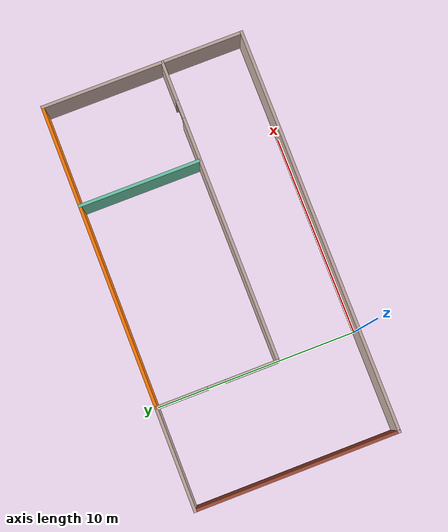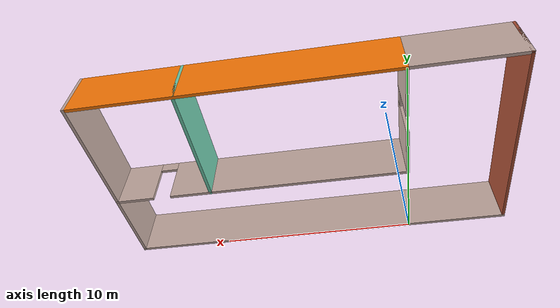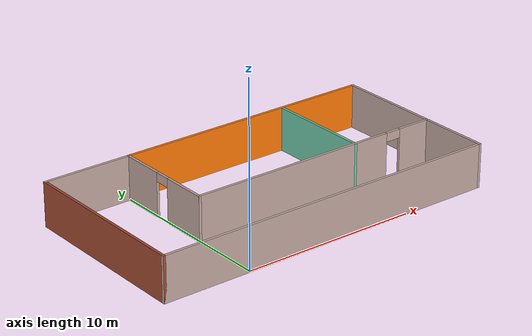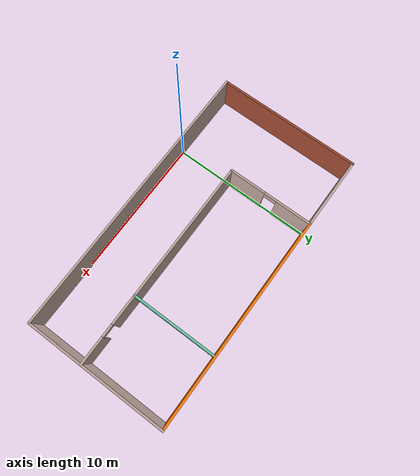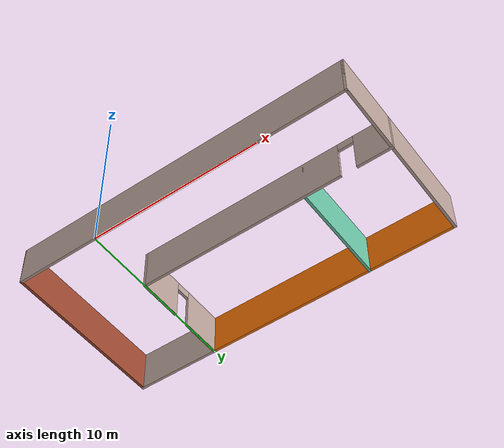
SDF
<?xml version='1.0'?>
<sdf version='1.6'>
  <model name='house'>
    <pose frame=''>5 5 0 0 -0 0</pose>
    <link name='Wall_0'>
      <collision name='Wall_0_Collision'>
        <geometry>
          <box>
            <size>10.15 0.15 2.5</size>
          </box>
        </geometry>
        <pose frame=''>0 0 1.25 0 -0 0</pose>
      </collision>
      <visual name='Wall_0_Visual'>
        <pose frame=''>0 0 1.25 0 -0 0</pose>
        <geometry>
          <box>
            <size>10.15 0.15 2.5</size>
          </box>
        </geometry>
        <material>
          <script>
            <uri>file://media/materials/scripts/gazebo.material</uri>
            <name>Gazebo/Bricks</name>
          </script>
          <ambient>0.760784 0.662745 0.627451 1</ambient>
        </material>
        <meta>
          <layer>0</layer>
        </meta>
      </visual>
      <pose frame=''>-10 0 0 0 -0 1.5708</pose>
    </link>
    <link name='Wall_11'>
      <collision name='Wall_11_Collision'>
        <geometry>
          <box>
            <size>15 0.15 2.5</size>
          </box>
        </geometry>
        <pose frame=''>0 0 1.25 0 -0 0</pose>
      </collision>
      <visual name='Wall_11_Visual'>
        <pose frame=''>0 0 1.25 0 -0 0</pose>
        <geometry>
          <box>
            <size>15 0.15 2.5</size>
          </box>
        </geometry>
        <material>
          <script>
            <uri>file://media/materials/scripts/gazebo.material</uri>
            <name>Gazebo/Grey</name>
          </script>
          <ambient>0.996078 0.47451 0.0196078 1</ambient>
        </material>
        <meta>
          <layer>0</layer>
        </meta>
      </visual>
      <pose frame=''>2.425 5 0 0 -0 0</pose>
    </link>
    <link name='Wall_13'>
      <collision name='Wall_13_Collision'>
        <geometry>
          <box>
            <size>5.15 0.15 2.5</size>
          </box>
        </geometry>
        <pose frame=''>0 0 1.25 0 -0 0</pose>
      </collision>
      <visual name='Wall_13_Visual'>
        <pose frame=''>0 0 1.25 0 -0 0</pose>
        <geometry>
          <box>
            <size>5.15 0.15 2.5</size>
          </box>
        </geometry>
        <material>
          <script>
            <uri>file://media/materials/scripts/gazebo.material</uri>
            <name>Gazebo/Grey</name>
          </script>
          <ambient>0.760784 0.662745 0.627451 1</ambient>
        </material>
        <meta>
          <layer>0</layer>
        </meta>
      </visual>
      <pose frame=''>-7.5 5 0 0 -0 0</pose>
    </link>
    <link name='Wall_15'>
      <collision name='Wall_15_Collision'>
        <geometry>
          <box>
            <size>6.15 0.15 2.5</size>
          </box>
        </geometry>
        <pose frame=''>0 0 1.25 0 -0 0</pose>
      </collision>
      <visual name='Wall_15_Visual'>
        <pose frame=''>0 0 1.25 0 -0 0</pose>
        <geometry>
          <box>
            <size>6.15 0.15 2.5</size>
          </box>
        </geometry>
        <material>
          <script>
            <uri>file://media/materials/scripts/gazebo.material</uri>
            <name>Gazebo/Grey</name>
          </script>
          <ambient>0.435294 0.796078 0.67451 1</ambient>
        </material>
        <meta>
          <layer>0</layer>
        </meta>
      </visual>
      <pose frame=''>5 2 0 0 0 -1.5708</pose>
    </link>
    <link name='Wall_2'>
      <collision name='Wall_2_Collision'>
        <geometry>
          <box>
            <size>20.15 0.15 2.5</size>
          </box>
        </geometry>
        <pose frame=''>0 0 1.25 0 -0 0</pose>
      </collision>
      <visual name='Wall_2_Visual'>
        <pose frame=''>0 0 1.25 0 -0 0</pose>
        <geometry>
          <box>
            <size>20.15 0.15 2.5</size>
          </box>
        </geometry>
        <material>
          <script>
            <uri>file://media/materials/scripts/gazebo.material</uri>
            <name>Gazebo/Grey</name>
          </script>
          <ambient>0.760784 0.662745 0.627451 1</ambient>
        </material>
        <meta>
          <layer>0</layer>
        </meta>
      </visual>
      <pose frame=''>0 -5 0 0 -0 0</pose>
    </link>
    <link name='Wall_4'>
      <collision name='Wall_4_Collision'>
        <geometry>
          <box>
            <size>10.15 0.15 2.5</size>
          </box>
        </geometry>
        <pose frame=''>0 0 1.25 0 -0 0</pose>
      </collision>
      <visual name='Wall_4_Visual'>
        <pose frame=''>0 0 1.25 0 -0 0</pose>
        <geometry>
          <box>
            <size>10.15 0.15 2.5</size>
          </box>
        </geometry>
        <material>
          <script>
            <uri>file://media/materials/scripts/gazebo.material</uri>
            <name>Gazebo/Grey</name>
          </script>
          <ambient>0.760784 0.662745 0.627451 1</ambient>
        </material>
        <meta>
          <layer>0</layer>
        </meta>
      </visual>
      <pose frame=''>10 0 0 0 -0 1.5708</pose>
    </link>
    <link name='Wall_6'>
      <pose frame=''>2.5 -1 0 0 -0 0</pose>
      <visual name='Wall_6_Visual_0'>
        <pose frame=''>-1.47053 0 1.25 0 -0 0</pose>
        <geometry>
          <box>
            <size>12.2089 0.15 2.5</size>
          </box>
        </geometry>
        <material>
          <script>
            <uri>file://media/materials/scripts/gazebo.material</uri>
            <name>Gazebo/Grey</name>
          </script>
          <ambient>0.760784 0.662745 0.627451 1</ambient>
        </material>
        <meta>
          <layer>0</layer>
        </meta>
      </visual>
      <collision name='Wall_6_Collision_0'>
        <geometry>
          <box>
            <size>12.2089 0.15 2.5</size>
          </box>
        </geometry>
        <pose frame=''>-1.47053 0 1.25 0 -0 0</pose>
      </collision>
      <visual name='Wall_6_Visual_1'>
        <pose frame=''>6.55447 0 1.25 0 -0 0</pose>
        <geometry>
          <box>
            <size>2.04107 0.15 2.5</size>
          </box>
        </geometry>
        <material>
          <script>
            <uri>file://media/materials/scripts/gazebo.material</uri>
            <name>Gazebo/Grey</name>
          </script>
          <ambient>0.760784 0.662745 0.627451 1</ambient>
        </material>
        <meta>
          <layer>0</layer>
        </meta>
      </visual>
      <collision name='Wall_6_Collision_1'>
        <geometry>
          <box>
            <size>2.04107 0.15 2.5</size>
          </box>
        </geometry>
        <pose frame=''>6.55447 0 1.25 0 -0 0</pose>
      </collision>
      <visual name='Wall_6_Visual_2'>
        <pose frame=''>5.08393 0 2.25 0 -0 0</pose>
        <geometry>
          <box>
            <size>0.9 0.15 0.5</size>
          </box>
        </geometry>
        <material>
          <script>
            <uri>file://media/materials/scripts/gazebo.material</uri>
            <name>Gazebo/Grey</name>
          </script>
          <ambient>0.760784 0.662745 0.627451 1</ambient>
        </material>
        <meta>
          <layer>0</layer>
        </meta>
      </visual>
      <collision name='Wall_6_Collision_2'>
        <geometry>
          <box>
            <size>0.9 0.15 0.5</size>
          </box>
        </geometry>
        <pose frame=''>5.08393 0 2.25 0 -0 0</pose>
      </collision>
    </link>
    <link name='Wall_8'>
      <pose frame=''>-5 2 0 0 -0 1.5708</pose>
      <visual name='Wall_8_Visual_0'>
        <pose frame=''>-1.7494 0 1.25 0 -0 0</pose>
        <geometry>
          <box>
            <size>2.65121 0.15 2.5</size>
          </box>
        </geometry>
        <material>
          <script>
            <uri>file://media/materials/scripts/gazebo.material</uri>
            <name>Gazebo/Grey</name>
          </script>
          <ambient>0.760784 0.662745 0.627451 1</ambient>
        </material>
        <meta>
          <layer>0</layer>
        </meta>
      </visual>
      <collision name='Wall_8_Collision_0'>
        <geometry>
          <box>
            <size>2.65121 0.15 2.5</size>
          </box>
        </geometry>
        <pose frame=''>-1.7494 0 1.25 0 -0 0</pose>
      </collision>
      <visual name='Wall_8_Visual_1'>
        <pose frame=''>1.7756 0 1.25 0 -0 0</pose>
        <geometry>
          <box>
            <size>2.59879 0.15 2.5</size>
          </box>
        </geometry>
        <material>
          <script>
            <uri>file://media/materials/scripts/gazebo.material</uri>
            <name>Gazebo/Grey</name>
          </script>
          <ambient>0.760784 0.662745 0.627451 1</ambient>
        </material>
        <meta>
          <layer>0</layer>
        </meta>
      </visual>
      <collision name='Wall_8_Collision_1'>
        <geometry>
          <box>
            <size>2.59879 0.15 2.5</size>
          </box>
        </geometry>
        <pose frame=''>1.7756 0 1.25 0 -0 0</pose>
      </collision>
      <visual name='Wall_8_Visual_2'>
        <pose frame=''>0.026206 0 2.25 0 -0 0</pose>
        <geometry>
          <box>
            <size>0.9 0.15 0.5</size>
          </box>
        </geometry>
        <material>
          <script>
            <uri>file://media/materials/scripts/gazebo.material</uri>
            <name>Gazebo/Grey</name>
          </script>
          <ambient>0.760784 0.662745 0.627451 1</ambient>
        </material>
        <meta>
          <layer>0</layer>
        </meta>
      </visual>
      <collision name='Wall_8_Collision_2'>
        <geometry>
          <box>
            <size>0.9 0.15 0.5</size>
          </box>
        </geometry>
        <pose frame=''>0.026206 0 2.25 0 -0 0</pose>
      </collision>
    </link>
    <static>1</static>
  </model>
</sdf>
